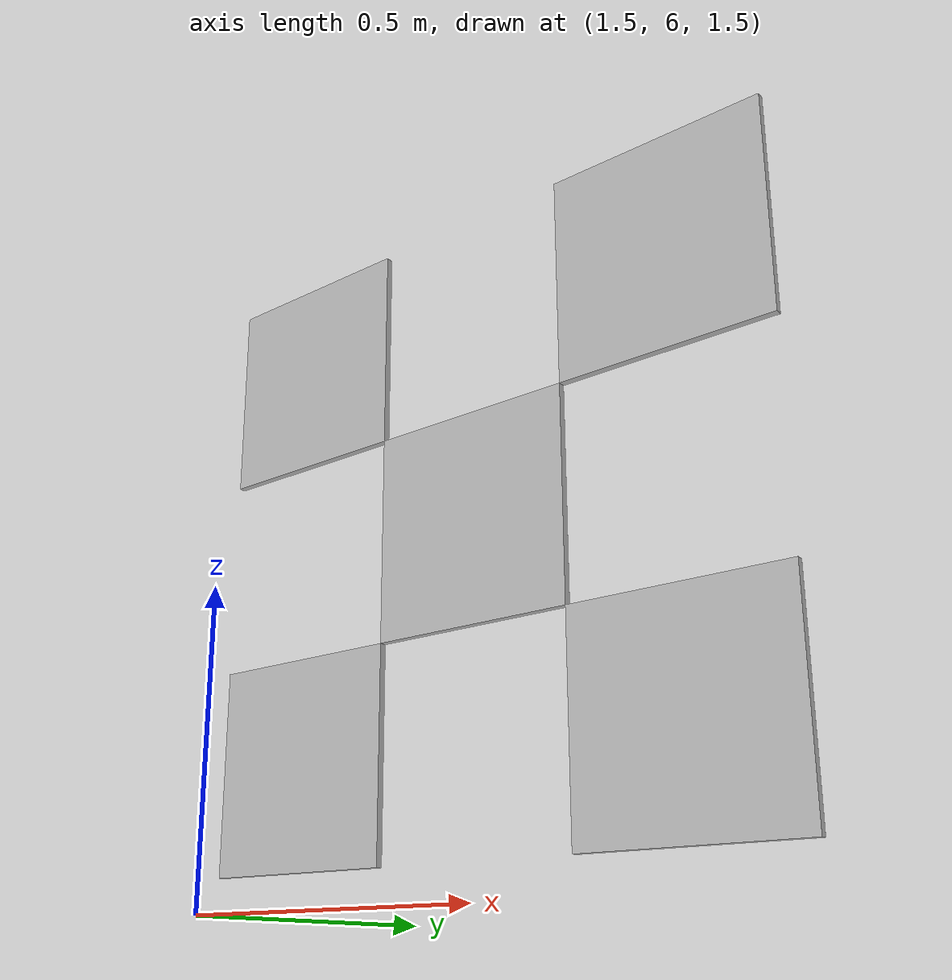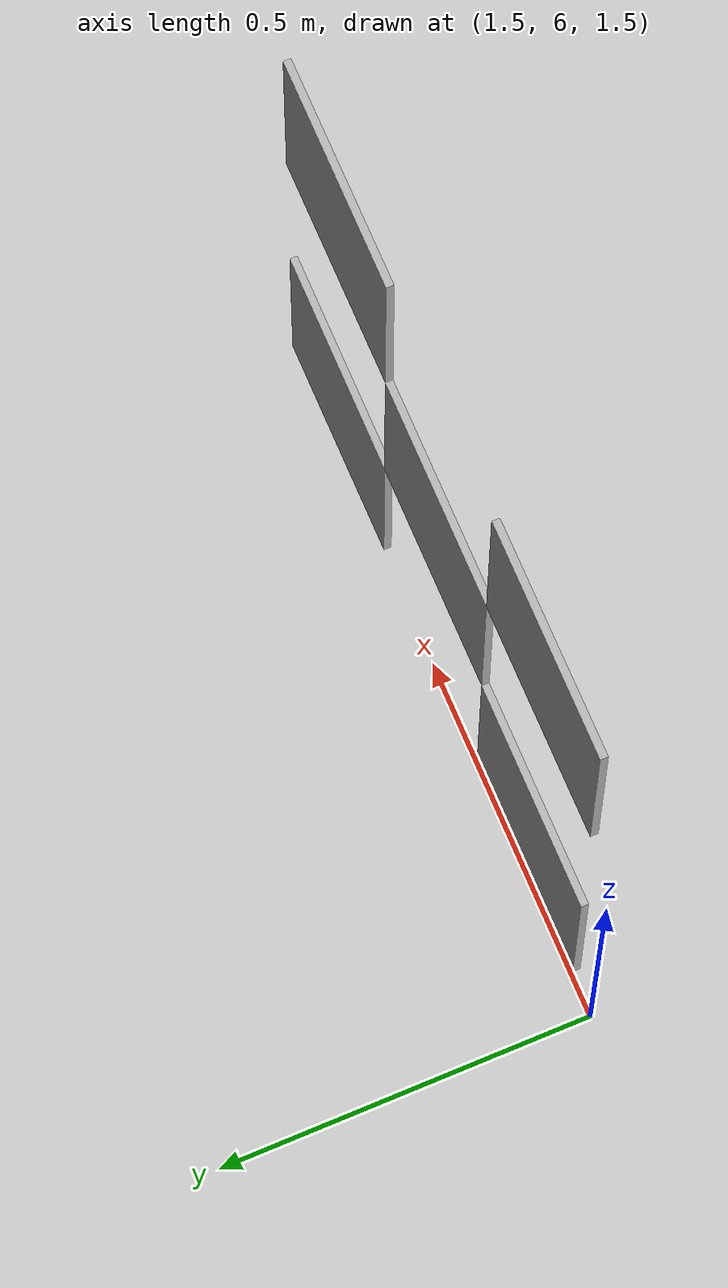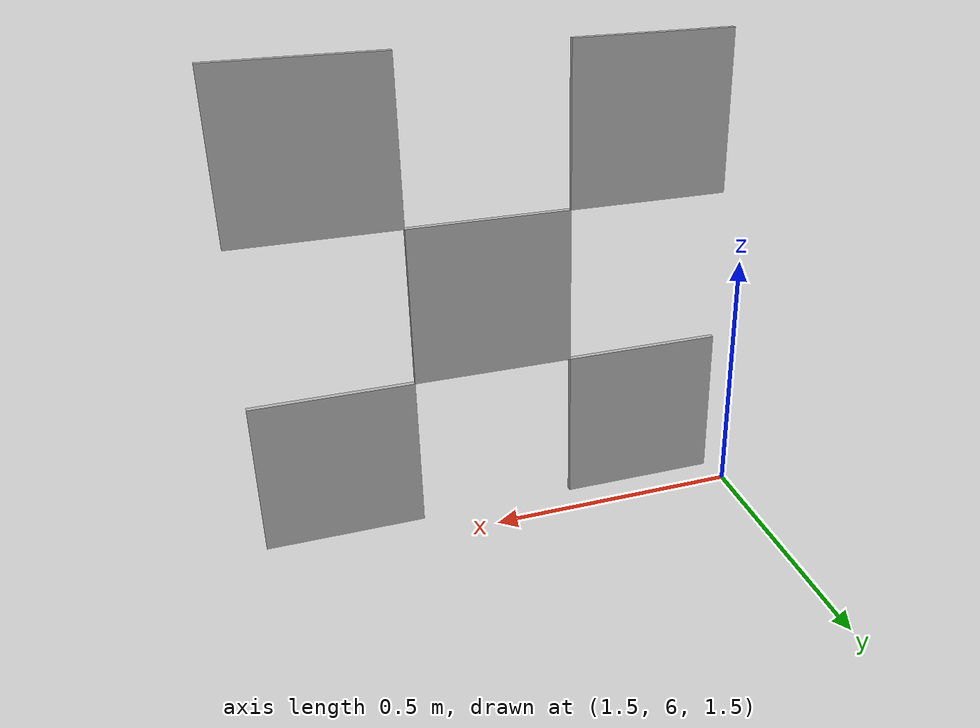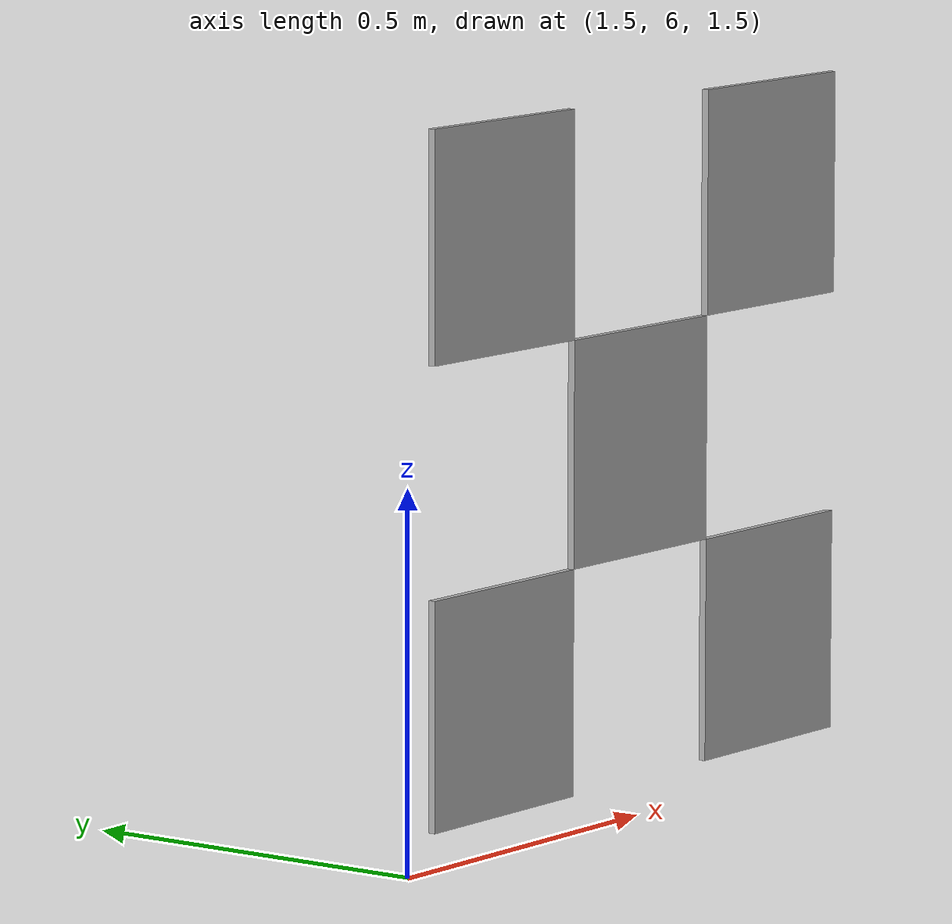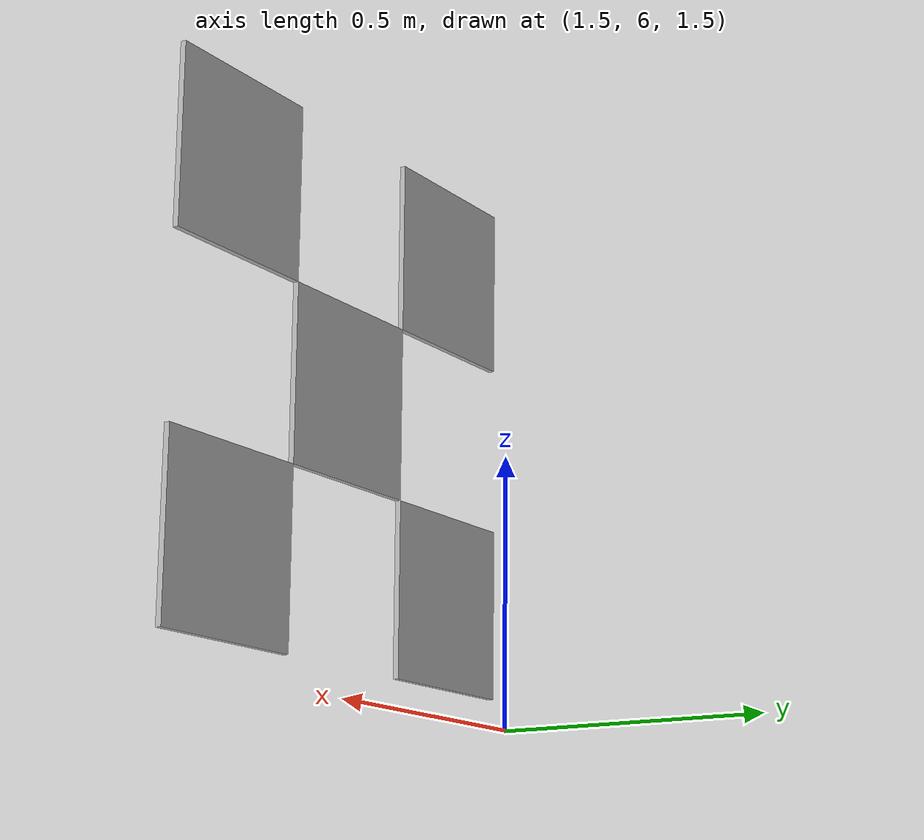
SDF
<?xml version="1.0" ?>
<sdf version="1.4">

	<model name='tag_bundle6'>

		<static>True</static>

		<link name="tag_25">

			<pose>2 6 2 0 0 1.5713</pose>

			<inertial>
	        	<mass>0.1</mass>

	        	<inertia>
					<ixx>0.0166667</ixx>
					<ixy>0</ixy>
					<ixz>0</ixz>
					<iyy>0.0166667</iyy>
					<iyz>0</iyz>
					<izz>0.0166667</izz>
        		</inertia>

        		<pose frame=''>0 0 0 0 -0 0</pose>
      		</inertial>

			<pose frame=''>0 0 0 0 -0 0</pose>
			<gravity>1</gravity>
			<self_collide>0</self_collide>
			<kinematic>0</kinematic>
			<enable_wind>0</enable_wind>

			<visual name='visual_25'>
				<pose frame=''>0 0 0 0 -0 0</pose>

		        <geometry>
		        	<box>
		        	<size>0.01 0.3 0.3</size>
		        	</box>
		        </geometry>

		        <material>
		        	<lighting>0</lighting>

		        	<script>
		        		<uri>models://media/materials/scripts/Apriltag.material</uri>
		        		<name>Apriltag/id25</name>
		          	</script>

		        	<shader type='vertex'>
		        		<normal_map>__default__</normal_map>
		          	</shader>

		        	<ambient>0.3 0.3 0.3 1</ambient>
		        	<diffuse>0.7 0.7 0.7 1</diffuse>
		        	<specular>0.01 0.01 0.01 1</specular>
		        	<emissive>0 0 0 1</emissive>
		        </material>

		        <transparency>0</transparency>
		        <cast_shadows>1</cast_shadows>
			</visual>

			<collision name='collision_25'>
				<laser_retro>0</laser_retro>
        		<max_contacts>10</max_contacts>
        		<pose frame=''>0 0 0 0 -0 0</pose>

		        <geometry>
		        	<box>
		        		<size>0.01 0.3 0.3</size>
		        	</box>
		        </geometry>

		        <surface>
		        	<friction>
		            	<ode>
		            		<mu>1</mu>
		            		<mu2>1</mu2>
		            		<fdir1>0 0 0</fdir1>
		            		<slip1>0</slip1>
		            		<slip2>0</slip2>
		            	</ode>

		           		<torsional>
		            		<coefficient>1</coefficient>
	            			<patch_radius>0</patch_radius>
	            			<surface_radius>0</surface_radius>
	            			<use_patch_radius>1</use_patch_radius>

	            			<ode>
		                		<slip>0</slip>
		              		</ode>
		            	</torsional>
		          	</friction>

		        	<bounce>
		            	<restitution_coefficient>0</restitution_coefficient>
		            	<threshold>1e+06</threshold>
		        	</bounce>

		        	<contact>
		            	<collide_without_contact>0</collide_without_contact>
		            	<collide_without_contact_bitmask>1</collide_without_contact_bitmask>
		            	<collide_bitmask>1</collide_bitmask>

		            	<ode>
		            		<soft_cfm>0</soft_cfm>
		            		<soft_erp>0.2</soft_erp>
		            		<kp>1e+13</kp>
		            		<kd>1</kd>
		            		<max_vel>0.01</max_vel>
		            		<min_depth>0</min_depth>
		            	</ode>

			            <bullet>
			            	<split_impulse>1</split_impulse>
			            	<split_impulse_penetration_threshold>-0.01</split_impulse_penetration_threshold>
			            	<soft_cfm>0</soft_cfm>
			            	<soft_erp>0.2</soft_erp>
			            	<kp>1e+13</kp>
			            	<kd>1</kd>
			            </bullet>
		        	</contact>
		        </surface>
		    </collision>
		</link>
 -->
		<link name="tag_26">

			<pose>2.3 6 2.3 0 0 1.5713</pose>

			<inertial>
	        	<mass>0.1</mass>

	        	<inertia>
					<ixx>0.0166667</ixx>
					<ixy>0</ixy>
					<ixz>0</ixz>
					<iyy>0.0166667</iyy>
					<iyz>0</iyz>
					<izz>0.0166667</izz>
        		</inertia>

        		<pose frame=''>0 0 0 0 -0 0</pose>
      		</inertial>

			<pose frame=''>0 0 0 0 -0 0</pose>
			<gravity>1</gravity>
			<self_collide>0</self_collide>
			<kinematic>0</kinematic>
			<enable_wind>0</enable_wind>

			<visual name='visual_26'>
				<pose frame=''>0 0 0 0 -0 0</pose>

		        <geometry>
		        	<box>
		        	<size>0.01 0.3 0.3</size>
		        	</box>
		        </geometry>

		        <material>
		        	<lighting>0</lighting>

		        	<script>
		        		<uri>models://media/materials/scripts/Apriltag.material</uri>
		        		<name>Apriltag/id26</name>
		          	</script>

		        	<shader type='vertex'>
		        		<normal_map>__default__</normal_map>
		          	</shader>

		        	<ambient>0.3 0.3 0.3 1</ambient>
		        	<diffuse>0.7 0.7 0.7 1</diffuse>
		        	<specular>0.01 0.01 0.01 1</specular>
		        	<emissive>0 0 0 1</emissive>
		        </material>

		        <transparency>0</transparency>
		        <cast_shadows>1</cast_shadows>
			</visual>

			<collision name='collision_26'>
				<laser_retro>0</laser_retro>
        		<max_contacts>10</max_contacts>
        		<pose frame=''>0 0 0 0 -0 0</pose>

		        <geometry>
		        	<box>
		        		<size>0.01 0.3 0.3</size>
		        	</box>
		        </geometry>

		        <surface>
		        	<friction>
		            	<ode>
		            		<mu>1</mu>
		            		<mu2>1</mu2>
		            		<fdir1>0 0 0</fdir1>
		            		<slip1>0</slip1>
		            		<slip2>0</slip2>
		            	</ode>

		           		<torsional>
		            		<coefficient>1</coefficient>
	            			<patch_radius>0</patch_radius>
	            			<surface_radius>0</surface_radius>
	            			<use_patch_radius>1</use_patch_radius>

	            			<ode>
		                		<slip>0</slip>
		              		</ode>
		            	</torsional>
		          	</friction>

		        	<bounce>
		            	<restitution_coefficient>0</restitution_coefficient>
		            	<threshold>1e+06</threshold>
		        	</bounce>

		        	<contact>
		            	<collide_without_contact>0</collide_without_contact>
		            	<collide_without_contact_bitmask>1</collide_without_contact_bitmask>
		            	<collide_bitmask>1</collide_bitmask>

		            	<ode>
		            		<soft_cfm>0</soft_cfm>
		            		<soft_erp>0.2</soft_erp>
		            		<kp>1e+13</kp>
		            		<kd>1</kd>
		            		<max_vel>0.01</max_vel>
		            		<min_depth>0</min_depth>
		            	</ode>

			            <bullet>
			            	<split_impulse>1</split_impulse>
			            	<split_impulse_penetration_threshold>-0.01</split_impulse_penetration_threshold>
			            	<soft_cfm>0</soft_cfm>
			            	<soft_erp>0.2</soft_erp>
			            	<kp>1e+13</kp>
			            	<kd>1</kd>
			            </bullet>
		        	</contact>
		        </surface>
		    </collision>
		</link>

		<link name="tag_27">

			<pose>1.7 6 2.3 0 0 1.5713</pose>

			<inertial>
	        	<mass>0.1</mass>

	        	<inertia>
					<ixx>0.0166667</ixx>
					<ixy>0</ixy>
					<ixz>0</ixz>
					<iyy>0.0166667</iyy>
					<iyz>0</iyz>
					<izz>0.0166667</izz>
        		</inertia>

        		<pose frame=''>0 0 0 0 -0 0</pose>
      		</inertial>

			<pose frame=''>0 0 0 0 -0 0</pose>
			<gravity>1</gravity>
			<self_collide>0</self_collide>
			<kinematic>0</kinematic>
			<enable_wind>0</enable_wind>

			<visual name='visual_27'>
				<pose frame=''>0 0 0 0 -0 0</pose>

		        <geometry>
		        	<box>
		        	<size>0.01 0.3 0.3</size>
		        	</box>
		        </geometry>

		        <material>
		        	<lighting>0</lighting>

		        	<script>
		        		<uri>models://media/materials/scripts/Apriltag.material</uri>
		        		<name>Apriltag/id27</name>
		          	</script>

		        	<shader type='vertex'>
		        		<normal_map>__default__</normal_map>
		          	</shader>

		        	<ambient>0.3 0.3 0.3 1</ambient>
		        	<diffuse>0.7 0.7 0.7 1</diffuse>
		        	<specular>0.01 0.01 0.01 1</specular>
		        	<emissive>0 0 0 1</emissive>
		        </material>

		        <transparency>0</transparency>
		        <cast_shadows>1</cast_shadows>
			</visual>

			<collision name='collision_27'>
				<laser_retro>0</laser_retro>
        		<max_contacts>10</max_contacts>
        		<pose frame=''>0 0 0 0 -0 0</pose>

		        <geometry>
		        	<box>
		        		<size>0.01 0.3 0.3</size>
		        	</box>
		        </geometry>

		        <surface>
		        	<friction>
		            	<ode>
		            		<mu>1</mu>
		            		<mu2>1</mu2>
		            		<fdir1>0 0 0</fdir1>
		            		<slip1>0</slip1>
		            		<slip2>0</slip2>
		            	</ode>

		           		<torsional>
		            		<coefficient>1</coefficient>
	            			<patch_radius>0</patch_radius>
	            			<surface_radius>0</surface_radius>
	            			<use_patch_radius>1</use_patch_radius>

	            			<ode>
		                		<slip>0</slip>
		              		</ode>
		            	</torsional>
		          	</friction>

		        	<bounce>
		            	<restitution_coefficient>0</restitution_coefficient>
		            	<threshold>1e+06</threshold>
		        	</bounce>

		        	<contact>
		            	<collide_without_contact>0</collide_without_contact>
		            	<collide_without_contact_bitmask>1</collide_without_contact_bitmask>
		            	<collide_bitmask>1</collide_bitmask>

		            	<ode>
		            		<soft_cfm>0</soft_cfm>
		            		<soft_erp>0.2</soft_erp>
		            		<kp>1e+13</kp>
		            		<kd>1</kd>
		            		<max_vel>0.01</max_vel>
		            		<min_depth>0</min_depth>
		            	</ode>

			            <bullet>
			            	<split_impulse>1</split_impulse>
			            	<split_impulse_penetration_threshold>-0.01</split_impulse_penetration_threshold>
			            	<soft_cfm>0</soft_cfm>
			            	<soft_erp>0.2</soft_erp>
			            	<kp>1e+13</kp>
			            	<kd>1</kd>
			            </bullet>
		        	</contact>
		        </surface>
		    </collision>
		</link>

		<link name="tag_28">

			<pose>1.7 6 1.7 0 0 1.5713</pose>

			<inertial>
	        	<mass>0.1</mass>

	        	<inertia>
					<ixx>0.0166667</ixx>
					<ixy>0</ixy>
					<ixz>0</ixz>
					<iyy>0.0166667</iyy>
					<iyz>0</iyz>
					<izz>0.0166667</izz>
        		</inertia>

        		<pose frame=''>0 0 0 0 -0 0</pose>
      		</inertial>

			<pose frame=''>0 0 0 0 -0 0</pose>
			<gravity>1</gravity>
			<self_collide>0</self_collide>
			<kinematic>0</kinematic>
			<enable_wind>0</enable_wind>

			<visual name='visual_28'>
				<pose frame=''>0 0 0 0 -0 0</pose>

		        <geometry>
		        	<box>
		        	<size>0.01 0.3 0.3</size>
		        	</box>
		        </geometry>

		        <material>
		        	<lighting>0</lighting>

		        	<script>
		        		<uri>models://media/materials/scripts/Apriltag.material</uri>
		        		<name>Apriltag/id28</name>
		          	</script>

		        	<shader type='vertex'>
		        		<normal_map>__default__</normal_map>
		          	</shader>

		        	<ambient>0.3 0.3 0.3 1</ambient>
		        	<diffuse>0.7 0.7 0.7 1</diffuse>
		        	<specular>0.01 0.01 0.01 1</specular>
		        	<emissive>0 0 0 1</emissive>
		        </material>

		        <transparency>0</transparency>
		        <cast_shadows>1</cast_shadows>
			</visual>

			<collision name='collision_28'>
				<laser_retro>0</laser_retro>
        		<max_contacts>10</max_contacts>
        		<pose frame=''>0 0 0 0 -0 0</pose>

		        <geometry>
		        	<box>
		        		<size>0.01 0.3 0.3</size>
		        	</box>
		        </geometry>

		        <surface>
		        	<friction>
		            	<ode>
		            		<mu>1</mu>
		            		<mu2>1</mu2>
		            		<fdir1>0 0 0</fdir1>
		            		<slip1>0</slip1>
		            		<slip2>0</slip2>
		            	</ode>

		           		<torsional>
		            		<coefficient>1</coefficient>
	            			<patch_radius>0</patch_radius>
	            			<surface_radius>0</surface_radius>
	            			<use_patch_radius>1</use_patch_radius>

	            			<ode>
		                		<slip>0</slip>
		              		</ode>
		            	</torsional>
		          	</friction>

		        	<bounce>
		            	<restitution_coefficient>0</restitution_coefficient>
		            	<threshold>1e+06</threshold>
		        	</bounce>

		        	<contact>
		            	<collide_without_contact>0</collide_without_contact>
		            	<collide_without_contact_bitmask>1</collide_without_contact_bitmask>
		            	<collide_bitmask>1</collide_bitmask>

		            	<ode>
		            		<soft_cfm>0</soft_cfm>
		            		<soft_erp>0.2</soft_erp>
		            		<kp>1e+13</kp>
		            		<kd>1</kd>
		            		<max_vel>0.01</max_vel>
		            		<min_depth>0</min_depth>
		            	</ode>

			            <bullet>
			            	<split_impulse>1</split_impulse>
			            	<split_impulse_penetration_threshold>-0.01</split_impulse_penetration_threshold>
			            	<soft_cfm>0</soft_cfm>
			            	<soft_erp>0.2</soft_erp>
			            	<kp>1e+13</kp>
			            	<kd>1</kd>
			            </bullet>
		        	</contact>
		        </surface>
		    </collision>
		</link>

		<link name="tag_29">

			<pose>2.3 6 1.7 0 0 1.5713</pose>

			<inertial>
	        	<mass>0.1</mass>

	        	<inertia>
					<ixx>0.0166667</ixx>
					<ixy>0</ixy>
					<ixz>0</ixz>
					<iyy>0.0166667</iyy>
					<iyz>0</iyz>
					<izz>0.0166667</izz>
        		</inertia>

        		<pose frame=''>0 0 0 0 -0 0</pose>
      		</inertial>

			<pose frame=''>0 0 0 0 -0 0</pose>
			<gravity>1</gravity>
			<self_collide>0</self_collide>
			<kinematic>0</kinematic>
			<enable_wind>0</enable_wind>

			<visual name='visual_29'>
				<pose frame=''>0 0 0 0 -0 0</pose>

		        <geometry>
		        	<box>
		        	<size>0.01 0.3 0.3</size>
		        	</box>
		        </geometry>

		        <material>
		        	<lighting>0</lighting>

		        	<script>
		        		<uri>models://media/materials/scripts/Apriltag.material</uri>
		        		<name>Apriltag/id29</name>
		          	</script>

		        	<shader type='vertex'>
		        		<normal_map>__default__</normal_map>
		          	</shader>

		        	<ambient>0.3 0.3 0.3 1</ambient>
		        	<diffuse>0.7 0.7 0.7 1</diffuse>
		        	<specular>0.01 0.01 0.01 1</specular>
		        	<emissive>0 0 0 1</emissive>
		        </material>

		        <transparency>0</transparency>
		        <cast_shadows>1</cast_shadows>
			</visual>

			<collision name='collision_29'>
				<laser_retro>0</laser_retro>
        		<max_contacts>10</max_contacts>
        		<pose frame=''>0 0 0 0 -0 0</pose>

		        <geometry>
		        	<box>
		        		<size>0.01 0.3 0.3</size>
		        	</box>
		        </geometry>

		        <surface>
		        	<friction>
		            	<ode>
		            		<mu>1</mu>
		            		<mu2>1</mu2>
		            		<fdir1>0 0 0</fdir1>
		            		<slip1>0</slip1>
		            		<slip2>0</slip2>
		            	</ode>

		           		<torsional>
		            		<coefficient>1</coefficient>
	            			<patch_radius>0</patch_radius>
	            			<surface_radius>0</surface_radius>
	            			<use_patch_radius>1</use_patch_radius>

	            			<ode>
		                		<slip>0</slip>
		              		</ode>
		            	</torsional>
		          	</friction>

		        	<bounce>
		            	<restitution_coefficient>0</restitution_coefficient>
		            	<threshold>1e+06</threshold>
		        	</bounce>

		        	<contact>
		            	<collide_without_contact>0</collide_without_contact>
		            	<collide_without_contact_bitmask>1</collide_without_contact_bitmask>
		            	<collide_bitmask>1</collide_bitmask>

		            	<ode>
		            		<soft_cfm>0</soft_cfm>
		            		<soft_erp>0.2</soft_erp>
		            		<kp>1e+13</kp>
		            		<kd>1</kd>
		            		<max_vel>0.01</max_vel>
		            		<min_depth>0</min_depth>
		            	</ode>

			            <bullet>
			            	<split_impulse>1</split_impulse>
			            	<split_impulse_penetration_threshold>-0.01</split_impulse_penetration_threshold>
			            	<soft_cfm>0</soft_cfm>
			            	<soft_erp>0.2</soft_erp>
			            	<kp>1e+13</kp>
			            	<kd>1</kd>
			            </bullet>
		        	</contact>
		        </surface>
		    </collision>
		</link>

		<joint name = "joint_1" type="fixed">
			<axis xyz="0 0 0" />
			<parent link="tag_25" />
			<child link="tag_26" />
	    </joint>

	    <joint name = "joint_2" type="fixed">
			<axis xyz="0 0 0" />
			<parent link="tag_25" />
			<child link="tag_27" />
	    </joint>

	    <joint name = "joint_3" type="fixed">
			<axis xyz="0 0 0" />
			<parent link="tag_25" />
			<child link="tag_28" />
	    </joint>

	    <joint name = "joint_4" type="fixed">
			<axis xyz="0 0 0" />
			<parent link="tag_25" />
			<child link="tag_29" />
	    </joint>

	</model>
</sdf>
